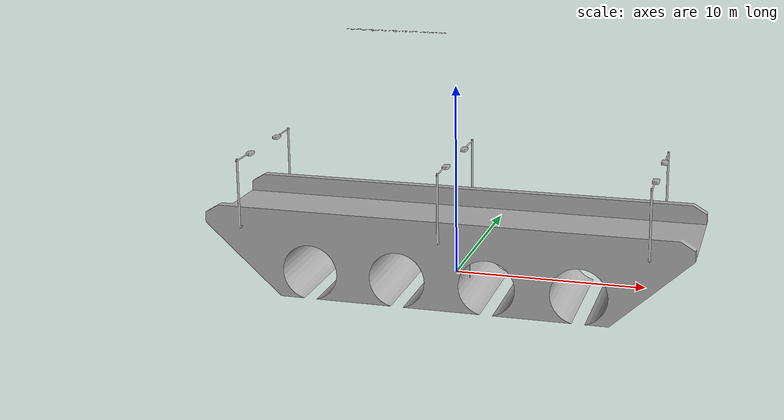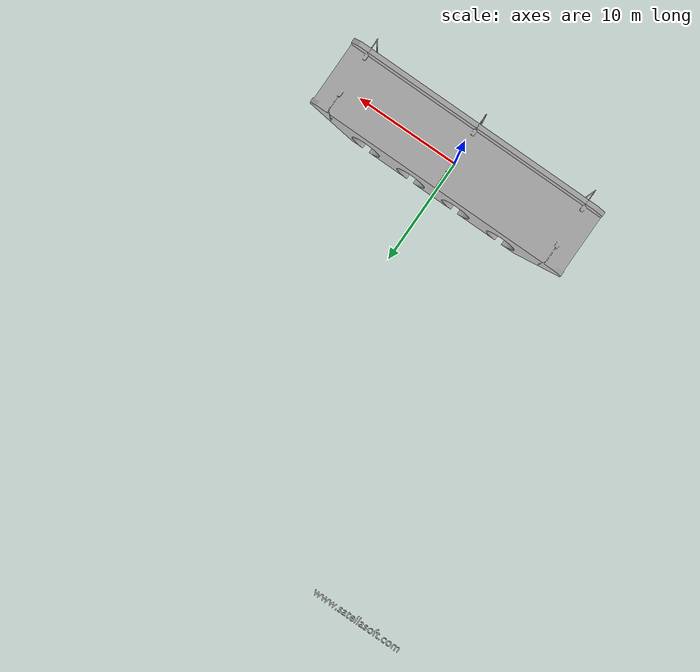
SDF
<?xml version="1.0" ?>
<sdf version="1.6">
  <model name="bridge">
    <static>true</static>
    <link name="link">
      <collision name="collision">
        <geometry>
          <mesh>
            <uri>model://bridge/meshes/Bridge.dae</uri>
          </mesh>
        </geometry>
      </collision>
      <visual name="visual">
        <geometry>
          <mesh>
            <uri>model://bridge/meshes/Bridge.dae</uri>
          </mesh>
        </geometry>
      </visual>
    </link>
  </model>
</sdf>
